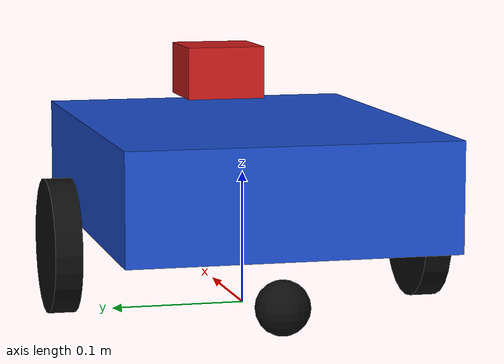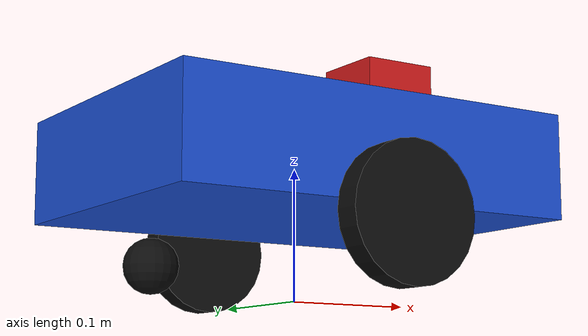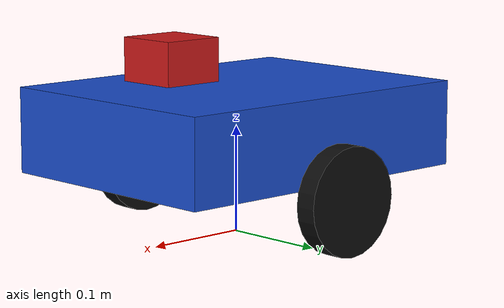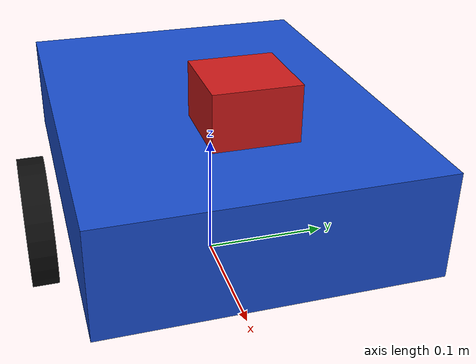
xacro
<?xml version="1.0"?>
<robot xmlns:xacro="http://www.ros.org/wiki/xacro" name="rl_diff_bot">
  <!--
    差速模型。轮距 0.28 m、轮半径 0.05 m 要和 rl_nav/scripts/room_spec.py 一致。
    插件话题是 /cmd_vel 和 /odom，坐标系 odom → base_footprint。
    odometry_source 不写，沿用 gazebo_ros_diff_drive 的默认值 1（世界位姿，不是编码器）。
  -->

  <material name="rl_blue">
    <color rgba="0.10 0.30 0.80 1"/>
  </material>
  <material name="rl_black">
    <color rgba="0.05 0.05 0.05 1"/>
  </material>
  <material name="rl_red">
    <color rgba="0.80 0.10 0.10 1"/>
  </material>

  <link name="base_footprint">
    <inertial>
      <mass value="0.001"/>
      <inertia ixx="1e-6" ixy="0" ixz="0" iyy="1e-6" iyz="0" izz="1e-6"/>
    </inertial>
  </link>

  <joint name="base_joint" type="fixed">
    <parent link="base_footprint"/>
    <child link="base_link"/>
    <origin xyz="0 0 0.05" rpy="0 0 0"/>
  </joint>

  <link name="base_link">
    <visual>
      <origin xyz="0 0 0.05" rpy="0 0 0"/>
      <geometry>
        <box size="0.32 0.24 0.08"/>
      </geometry>
      <material name="rl_blue"/>
    </visual>
    <collision>
      <origin xyz="0 0 0.05" rpy="0 0 0"/>
      <geometry>
        <box size="0.32 0.24 0.08"/>
      </geometry>
    </collision>
    <inertial>
      <origin xyz="0 0 0.05" rpy="0 0 0"/>
      <mass value="2.0"/>
      <inertia ixx="0.010667" ixy="0" ixz="0" iyy="0.018133" iyz="0" izz="0.026667"/>
    </inertial>
  </link>

  <link name="left_wheel_link">
    <visual>
      <origin xyz="0 0 0" rpy="-1.5707963 0 0"/>
      <geometry>
        <cylinder radius="0.05" length="0.02"/>
      </geometry>
      <material name="rl_black"/>
    </visual>
    <collision>
      <origin xyz="0 0 0" rpy="-1.5707963 0 0"/>
      <geometry>
        <cylinder radius="0.05" length="0.02"/>
      </geometry>
    </collision>
    <inertial>
      <mass value="0.1"/>
      <inertia ixx="0.0000658" ixy="0" ixz="0" iyy="0.000125" iyz="0" izz="0.0000658"/>
    </inertial>
  </link>

  <joint name="left_wheel_joint" type="continuous">
    <parent link="base_link"/>
    <child link="left_wheel_link"/>
    <origin xyz="0 0.14 0" rpy="0 0 0"/>
    <axis xyz="0 1 0"/>
  </joint>

  <link name="right_wheel_link">
    <visual>
      <origin xyz="0 0 0" rpy="-1.5707963 0 0"/>
      <geometry>
        <cylinder radius="0.05" length="0.02"/>
      </geometry>
      <material name="rl_black"/>
    </visual>
    <collision>
      <origin xyz="0 0 0" rpy="-1.5707963 0 0"/>
      <geometry>
        <cylinder radius="0.05" length="0.02"/>
      </geometry>
    </collision>
    <inertial>
      <mass value="0.1"/>
      <inertia ixx="0.0000658" ixy="0" ixz="0" iyy="0.000125" iyz="0" izz="0.0000658"/>
    </inertial>
  </link>

  <joint name="right_wheel_joint" type="continuous">
    <parent link="base_link"/>
    <child link="right_wheel_link"/>
    <origin xyz="0 -0.14 0" rpy="0 0 0"/>
    <axis xyz="0 1 0"/>
  </joint>

  <link name="caster_link">
    <visual>
      <geometry>
        <sphere radius="0.02"/>
      </geometry>
      <material name="rl_black"/>
    </visual>
    <collision>
      <geometry>
        <sphere radius="0.02"/>
      </geometry>
    </collision>
    <inertial>
      <mass value="0.05"/>
      <inertia ixx="0.000008" ixy="0" ixz="0" iyy="0.000008" iyz="0" izz="0.000008"/>
    </inertial>
  </link>

  <joint name="caster_joint" type="fixed">
    <parent link="base_link"/>
    <child link="caster_link"/>
    <origin xyz="-0.12 0 -0.03" rpy="0 0 0"/>
  </joint>

  <link name="laser_link">
    <visual>
      <geometry>
        <box size="0.06 0.06 0.04"/>
      </geometry>
      <material name="rl_red"/>
    </visual>
    <collision>
      <geometry>
        <box size="0.06 0.06 0.04"/>
      </geometry>
    </collision>
    <inertial>
      <mass value="0.05"/>
      <inertia ixx="0.000022" ixy="0" ixz="0" iyy="0.000022" iyz="0" izz="0.000030"/>
    </inertial>
  </link>

  <joint name="laser_joint" type="fixed">
    <parent link="base_link"/>
    <child link="laser_link"/>
    <origin xyz="0.08 0 0.12" rpy="0 0 0"/>
  </joint>

  <gazebo reference="base_link">
    <material>Gazebo/Blue</material>
  </gazebo>
  <gazebo reference="left_wheel_link">
    <material>Gazebo/Black</material>
    <mu1>1.0</mu1>
    <mu2>1.0</mu2>
    <kp>1000000.0</kp>
    <kd>100.0</kd>
    <fdir1>1 0 0</fdir1>
  </gazebo>
  <gazebo reference="right_wheel_link">
    <material>Gazebo/Black</material>
    <mu1>1.0</mu1>
    <mu2>1.0</mu2>
    <kp>1000000.0</kp>
    <kd>100.0</kd>
    <fdir1>1 0 0</fdir1>
  </gazebo>
  <gazebo reference="caster_link">
    <material>Gazebo/Grey</material>
    <mu1>0.01</mu1>
    <mu2>0.01</mu2>
  </gazebo>
  <gazebo reference="laser_link">
    <material>Gazebo/Red</material>
    <sensor type="ray" name="lidar">
      <pose>0 0 0 0 0 0</pose>
      <visualize>true</visualize>
      <update_rate>10</update_rate>
      <always_on>true</always_on>
      <ray>
        <scan>
          <horizontal>
            <samples>360</samples>
            <resolution>1</resolution>
            <min_angle>-3.14159</min_angle>
            <max_angle>3.14159</max_angle>
          </horizontal>
        </scan>
        <range>
          <min>0.12</min>
          <max>8.0</max>
          <resolution>0.01</resolution>
        </range>
        <noise>
          <type>gaussian</type>
          <mean>0.0</mean>
          <stddev>0.01</stddev>
        </noise>
      </ray>
      <plugin name="lidar_controller" filename="libgazebo_ros_ray_sensor.so">
        <ros>
          <remapping>~/out:=scan</remapping>
        </ros>
        <output_type>sensor_msgs/LaserScan</output_type>
        <frame_name>laser_link</frame_name>
      </plugin>
    </sensor>
  </gazebo>

  <gazebo>
    <plugin name="diff_drive" filename="libgazebo_ros_diff_drive.so">
      <ros>
        <remapping>cmd_vel:=cmd_vel</remapping>
        <remapping>odom:=odom</remapping>
      </ros>
      <update_rate>50</update_rate>
      <left_joint>left_wheel_joint</left_joint>
      <right_joint>right_wheel_joint</right_joint>
      <wheel_separation>0.28</wheel_separation>
      <wheel_diameter>0.10</wheel_diameter>
      <max_wheel_torque>10</max_wheel_torque>
      <max_wheel_acceleration>1.0</max_wheel_acceleration>
      <publish_odom>true</publish_odom>
      <publish_odom_tf>true</publish_odom_tf>
      <publish_wheel_tf>false</publish_wheel_tf>
      <odometry_frame>odom</odometry_frame>
      <robot_base_frame>base_footprint</robot_base_frame>
    </plugin>
    <plugin name="joint_state_publisher" filename="libgazebo_ros_joint_state_publisher.so">
      <ros>
        <remapping>~/out:=joint_states</remapping>
      </ros>
      <update_rate>30</update_rate>
      <joint_name>left_wheel_joint</joint_name>
      <joint_name>right_wheel_joint</joint_name>
    </plugin>
  </gazebo>
</robot>
